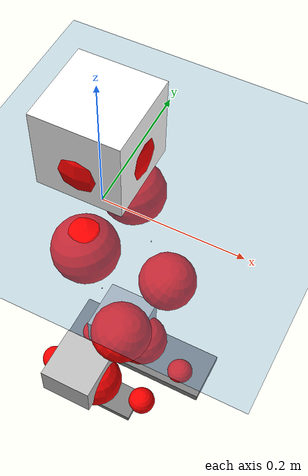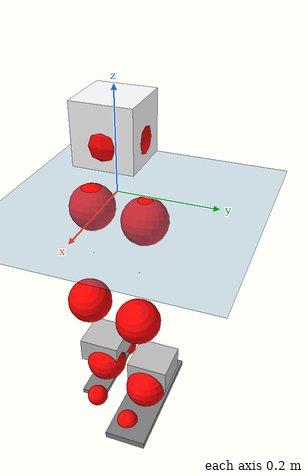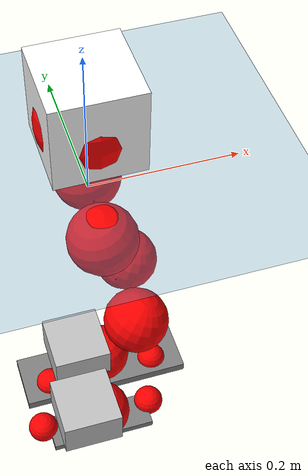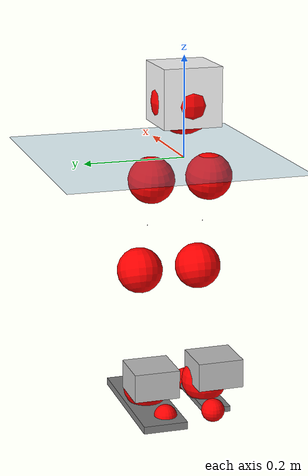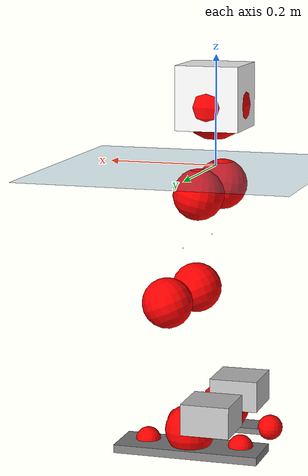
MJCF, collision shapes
<mujoco model="pi_12dof_release_v1">
  <compiler angle="radian" assetdir="assets" balanceinertia="true" inertiafromgeom="false"/>

  <option timestep="0.005" density="1.2" viscosity="2e-05"/>

  <size nkey="1"/>

  <visual>
    <quality shadowsize="8192"/>
    <map shadowclip="0.5"/>
  </visual>

  <default>
    <default class="/">
      <joint armature="0.01" damping="0.01" frictionloss="0.01"/>
      <geom contype="0" conaffinity="0" group="1" solref="-1000 -80"/>
      <site size="0.01 0.005 0.005" group="5"/>
      <general forcelimited="true" biastype="affine" gainprm="20" biasprm="0 -20 -0.5"/>
      <default class="foot">
        <geom size="0.0845 0.036 0.005" type="box" condim="6" group="4" priority="1" friction="0.9 0.2 0.2" solimp="0.015 1 0.005"/>
      </default>
      <default class="reward_collision_sphere">
        <geom group="5" rgba="1 0 0 1"/>
      </default>
    </default>
  </default>

  <asset>
    <texture type="skybox" colorspace="auto" name="//unnamed_texture_0" builtin="gradient" rgb1="0.95 0.95 0.95" rgb2="0.95 0.95 0.95" width="100" height="600"/>
    <texture type="2d" colorspace="auto" name="texplane" builtin="checker" rgb1="0.345 0.575 0.748" rgb2="0.345 0.575 0.748" markrgb="1 1 1" width="512" height="512"/>
    <material name="MatPlane" class="/" texture="texplane" texuniform="true" texrepeat="2 2" specular="0.9"/>
    <mesh name="baselink_1" class="/" file="baselink_1.STL"/>
    <mesh name="r_hip_pitch_link" class="/" file="r_hip_pitch_link.STL"/>
    <mesh name="r_hip_roll_link" class="/" file="r_hip_roll_link.STL"/>
    <mesh name="r_thigh_link" class="/" file="r_thigh_link.STL"/>
    <mesh name="r_calf_link" class="/" file="r_calf_link.STL"/>
    <mesh name="r_ankle_pitch_link" class="/" file="r_ankle_pitch_link.STL"/>
    <mesh name="r_ankle_roll_link" class="/" file="r_ankle_roll_link.STL"/>
    <mesh name="l_hip_pitch_link" class="/" file="l_hip_pitch_link.STL"/>
    <mesh name="l_hip_roll_link" class="/" file="l_hip_roll_link.STL"/>
    <mesh name="l_thigh_link" class="/" file="l_thigh_link.STL"/>
    <mesh name="l_calf_link" class="/" file="l_calf_link.STL"/>
    <mesh name="l_ankle_pitch_link" class="/" file="l_ankle_pitch_link.STL"/>
    <mesh name="l_ankle_roll_link" class="/" file="l_ankle_roll_link.STL"/>
  </asset>

  <worldbody>
    <geom name="floor" class="/" size="100 100 0.125" type="plane" group="0" material="MatPlane"/>
    <light name="toplight_shadow" class="/" pos="0 0 5" dir="0.0990148 0.0990148 -0.990148" type="directional" ambient="0.04 0.04 0.04" diffuse="0.55 0.55 0.55" specular="0.12 0.12 0.12"/>
    <light name="toplight_fill" class="/" pos="0 0 5" dir="0.0990148 0.0990148 -0.990148" type="directional" castshadow="false" ambient="0.04 0.04 0.04" diffuse="0.3 0.3 0.3" specular="0.08 0.08 0.08"/>
    <body name="trunk" pos="0.0020245 0.000337348 0.00436885" quat="1 0.000723717 -0.000168392 0.000625045">
      <inertial pos="0.00865916 0.00687302 0.0597604" quat="0.696346 0.0103332 0.0081574 0.717586" mass="3.40061" diaginertia="0.0331612 0.000978279 0.0293936"/>
      <joint name="//unnamed_joint_0" type="free"/>
      <geom name="//unnamed_geom_1" class="/" type="mesh" density="0" rgba="1 1 1 1" mesh="baselink_1"/>
      <geom name="//unnamed_geom_2" class="/" size="0.0578869 0.0578869 0.0578869" pos="0 0 0.121101" type="box" rgba="1 1 1 1"/>
      <geom name="//unnamed_geom_3" class="reward_collision_sphere" size="0.0636756" pos="0 0 0.105963"/>
      <site name="imu" class="/" pos="0.0453597 -0.00881164 -0.0346903" size="0.0115774"/>
      <camera name="track" class="/" pos="0 -1.30686 0" quat="0.707107 0.707107 0 0" mode="trackcom"/>
      <camera name="ego_camera" class="/" pos="0.0979514 0 0.272477" quat="-0.5 -0.5 0.5 0.5"/>
      <body name="r_hip_pitch_link" pos="0.000978065 -0.0143024 -0.0493034" quat="0.992252 -0.000479232 -0.124236 -0.000651125">
        <inertial pos="-0.00594349 -0.0342172 -0.00200632" quat="-0.0347427 0.707251 -0.027578 0.70557" mass="0.613119" diaginertia="0.000442408 1.12467e-05 0.000643548"/>
        <joint name="r_hip_pitch_joint" class="/" pos="0 0 0" axis="0.0376076 -0.99883 0.0303927" range="-1.75788 1.40779" armature="0.0125192" damping="0.0516522" frictionloss="0.0118164"/>
        <geom name="//unnamed_geom_4" class="/" type="mesh" density="0" rgba="0.75294 0.75294 0.75294 1" mesh="r_hip_pitch_link"/>
        <geom name="//unnamed_geom_5" class="/" size="0.000578869 0.000578869 0.000578869" type="box" rgba="0.75294 0.75294 0.75294 1"/>
        <body name="r_hip_roll_link" pos="0.000536657 -0.0391666 0.00272668" quat="1 -5.79679e-05 0.000162516 -0.00015996">
          <inertial pos="-0.00325773 0.000988537 -0.0996239" quat="0.704998 -0.0781739 -0.0818361 0.700122" mass="0.592061" diaginertia="0.0014241 3.40527e-05 0.00102785"/>
          <joint name="r_hip_roll_joint" class="/" pos="0 0 0" axis="-0.999022 -0.012121 -0.0425183" range="0.0255143 0.482292" armature="0.0122874" damping="0.00559653" frictionloss="0.00875039"/>
          <geom name="//unnamed_geom_6" class="/" type="mesh" density="0" rgba="0.75294 0.75294 0.75294 1" mesh="r_hip_roll_link"/>
          <geom name="//unnamed_geom_7" class="/" size="0.000578869 0.000578869 0.000578869" type="box" rgba="0.75294 0.75294 0.75294 1"/>
          <geom name="//unnamed_geom_8" class="reward_collision_sphere" size="0.0463095"/>
          <body name="r_thigh_link" pos="-0.00611917 0.00601494 -0.0956481" quat="0.999996 -0.000393481 0.0026389 -0.00119072">
            <inertial pos="-0.000135388 0.00235748 -0.0727747" quat="0.736167 0.676796 0.000581793 0.00239816" mass="0.176369" diaginertia="0.000489606 1.13645e-05 0.000469328"/>
            <joint name="r_thigh_joint" class="/" pos="0 0 0" axis="-0.0126283 -0.0125648 -0.999841" range="-0.312494 0.578323" armature="0.0106295" damping="0.000942312" frictionloss="0.012485"/>
            <geom name="//unnamed_geom_9" class="/" type="mesh" density="0" rgba="0.75294 0.75294 0.75294 1" mesh="r_thigh_link"/>
            <geom name="//unnamed_geom_10" class="/" size="0.000578869 0.000578869 0.000578869" type="box" rgba="0.75294 0.75294 0.75294 1"/>
            <body name="r_calf_link" pos="0.00381615 -0.000773248 -0.106865" quat="0.947292 -0.000618065 0.320372 0.00068249">
              <inertial pos="-0.00723731 -0.00138071 -0.104068" quat="0.999961 0.00151601 0.00112827 0.00868016" mass="1.19713" diaginertia="0.0130319 0.000384254 0.00131621"/>
              <joint name="r_calf_joint" class="/" pos="0 0 0" axis="-0.0163913 -0.999667 0.0199125" stiffness="0.00232184" range="-1.69655 0.594586" armature="0.0139023" damping="0" frictionloss="0.0127674"/>
              <geom name="//unnamed_geom_11" class="/" type="mesh" density="0" rgba="0.75294 0.75294 0.75294 1" mesh="r_calf_link"/>
              <geom name="//unnamed_geom_12" class="/" size="0.000578869 0.000578869 0.000578869" type="box" rgba="0.75294 0.75294 0.75294 1"/>
              <geom name="//unnamed_geom_13" class="reward_collision_sphere" size="0.0463095"/>
              <body name="r_ankle_pitch_link" pos="0.00158994 -0.00756143 -0.209941" quat="0.980071 -5.35557e-05 -0.198649 -8.4397e-05">
                <inertial pos="0.00597508 0.00402225 -0.00223353" quat="-0.0293192 0.711417 -0.00974273 0.702091" mass="0.320027" diaginertia="0.0012771 2.68741e-05 0.000992317"/>
                <joint name="r_ankle_pitch_joint" class="/" pos="0 0 0" axis="-0.0052784 -0.999984 -0.00221735" stiffness="0.0215157" range="-1.31507 0.529808" armature="0.0107855" damping="0.0401995" frictionloss="0.0113007"/>
                <geom name="//unnamed_geom_14" class="/" type="mesh" density="0" rgba="0.75294 0.75294 0.75294 1" mesh="r_ankle_pitch_link"/>
                <geom name="//unnamed_geom_15" class="/" size="0.0451518 0.0463095 0.0289434" type="box" rgba="0.75294 0.75294 0.75294 1"/>
                <body name="r_ankle_roll_link" pos="0.0912386 0.0114026 -0.00121628" quat="1 0.00012791 0.000389696 0.000430853">
                  <inertial pos="-0.0314764 -0.00109802 -0.0296872" quat="0.548394 0.439638 0.435112 0.562726" mass="0.793776" diaginertia="0.00480555 0.000132595 0.00232399"/>
                  <joint name="r_ankle_roll_joint" class="/" pos="0 0 0" axis="-0.999895 0.0068667 -0.0127949" stiffness="0.00988931" range="-0.0724234 0.134177" armature="0.0115409" damping="0.0413906" frictionloss="0.00777052"/>
                  <geom name="//unnamed_geom_16" class="/" type="mesh" density="0" rgba="0.75294 0.75294 0.75294 1" mesh="r_ankle_roll_link"/>
                  <geom name="//unnamed_geom_17" class="/" type="mesh" rgba="0.75294 0.75294 0.75294 1" mesh="r_ankle_roll_link"/>
                  <geom name="right_foot" class="foot" size="0.0806608 0.0272498 0.00532829" pos="-0.0666069 0 -0.0666056"/>
                  <geom name="//unnamed_geom_19" class="reward_collision_sphere" size="0.0463095" pos="-0.0653009 0 -0.0302753"/>
                  <geom name="//unnamed_geom_20" class="reward_collision_sphere" size="0.0231548" pos="0.0195903 0.0130686 -0.0605505"/>
                  <geom name="//unnamed_geom_21" class="reward_collision_sphere" size="0.0231548" pos="-0.156722 0.0130686 -0.0605505"/>
                  <site name="right_foot" class="foot" pos="-0.0666069 0 -0.0666056" size="0.0115774"/>
                </body>
              </body>
            </body>
          </body>
        </body>
      </body>
      <body name="l_hip_pitch_link" pos="0.0087024 0.0140721 -0.0496273" quat="0.992194 2.90907e-07 -0.124708 -1.69148e-06">
        <inertial pos="-0.000374065 0.0280376 0.00116063" quat="-0.0334822 0.711216 0.0154475 0.702006" mass="0.612002" diaginertia="0.000529525 1.20727e-05 0.000939793"/>
        <joint name="l_hip_pitch_joint" class="/" pos="0 0 0" axis="0.0105808 0.999645 -0.0244435" range="-1.1019 1.79107" armature="0.00682343" damping="0.0475926" frictionloss="0.0107711"/>
        <geom name="//unnamed_geom_22" class="/" type="mesh" density="0" rgba="0.75294 0.75294 0.75294 1" mesh="l_hip_pitch_link"/>
        <geom name="//unnamed_geom_23" class="/" size="0.000578869 0.000578869 0.000578869" type="box" rgba="0.75294 0.75294 0.75294 1"/>
        <body name="l_hip_roll_link" pos="0.00363391 0.0468973 -5.13213e-06" quat="1 0.00016031 5.1003e-06 -0.000131771">
          <inertial pos="-0.000894762 -0.00562487 -0.094188" quat="0.694776 -0.0706042 -0.0723003 0.712091" mass="0.605989" diaginertia="0.00127586 3.44209e-05 0.00102236"/>
          <joint name="l_hip_roll_joint" class="/" pos="0 0 0" axis="-0.999037 0.0181414 0.0399559" stiffness="0.00205158" range="-0.677927 0.0386413" armature="0.0123403" damping="0.00602195" frictionloss="0.0155905"/>
          <geom name="//unnamed_geom_24" class="/" type="mesh" density="0" rgba="0.75294 0.75294 0.75294 1" mesh="l_hip_roll_link"/>
          <geom name="//unnamed_geom_25" class="/" size="0.000578869 0.000578869 0.000578869" type="box" rgba="0.75294 0.75294 0.75294 1"/>
          <geom name="//unnamed_geom_26" class="reward_collision_sphere" size="0.0463095"/>
          <body name="l_thigh_link" pos="0.00374542 -0.000704201 -0.103676" quat="1 0.000199041 -0.000423625 6.16829e-06">
            <inertial pos="0.000694382 0.000249272 -0.0749634" quat="0.654464 0.754957 -0.0296636 0.0289373" mass="0.176682" diaginertia="0.000490385 1.16247e-05 0.00051678"/>
            <joint name="l_thigh_joint" class="/" pos="0 0 0" axis="0.00411176 0.000656255 -0.999991" range="-0.538413 0.224802" armature="0.0104146" damping="0.0376796" frictionloss="0.00948886"/>
            <geom name="//unnamed_geom_27" class="/" type="mesh" density="0" rgba="0.75294 0.75294 0.75294 1" mesh="l_thigh_link"/>
            <geom name="//unnamed_geom_28" class="/" size="0.000578869 0.000578869 0.000578869" type="box" rgba="0.75294 0.75294 0.75294 1"/>
            <body name="l_calf_link" pos="0.00119849 0.00733303 -0.104575" quat="0.947024 0.00182668 0.321158 -0.000439537">
              <inertial pos="0.00801179 0.00045461 -0.112254" quat="0.999972 0.00338789 0.000628809 0.00665532" mass="1.28901" diaginertia="0.0138473 0.000430782 0.00157637"/>
              <joint name="l_calf_joint" class="/" pos="0 0 0" axis="-0.000146245 0.999982 0.00604987" range="-0.665436 1.85136" armature="0.0153134" damping="0.00804838" frictionloss="0.0156652"/>
              <geom name="//unnamed_geom_29" class="/" type="mesh" density="0" rgba="0.75294 0.75294 0.75294 1" mesh="l_calf_link"/>
              <geom name="//unnamed_geom_30" class="/" size="0.000578869 0.000578869 0.000578869" type="box" rgba="0.75294 0.75294 0.75294 1"/>
              <geom name="//unnamed_geom_31" class="reward_collision_sphere" size="0.0463095"/>
              <body name="l_ankle_pitch_link" pos="0.00227609 0.00168968 -0.219708" quat="0.980078 2.72583e-05 -0.198613 -0.000995987">
                <inertial pos="0.00160018 -0.0017353 0.0010748" quat="-0.000212468 0.707679 0.00274069 0.706529" mass="0.338801" diaginertia="0.0014155 3.027e-05 0.00108059"/>
                <joint name="l_ankle_pitch_joint" class="/" pos="0 0 0" axis="-0.00342608 0.999648 0.0263209" range="-0.522945 1.27224" armature="0.0114901" damping="0.0312321" frictionloss="0.00574896"/>
                <geom name="//unnamed_geom_32" class="/" type="mesh" density="0" rgba="0.75294 0.75294 0.75294 1" mesh="l_ankle_pitch_link"/>
                <geom name="//unnamed_geom_33" class="/" size="0.0451518 0.0463095 0.0289434" type="box" rgba="0.75294 0.75294 0.75294 1"/>
                <body name="l_ankle_roll_link" pos="0.105568 -0.0017347 6.72163e-05" quat="0.999999 0.000651569 -0.000543627 0.000582625">
                  <inertial pos="-0.0304488 -0.000222231 -0.0203797" quat="0.541392 0.455227 0.438602 0.554339" mass="0.84507" diaginertia="0.00456457 0.000116454 0.00236282"/>
                  <joint name="l_ankle_roll_joint" class="/" pos="0 0 0" axis="-0.999929 0.00852088 0.00838591" stiffness="0.00570871" range="-0.159621 0.145638" armature="0.0116339" damping="0.0146991" frictionloss="0.0164713"/>
                  <geom name="//unnamed_geom_34" class="/" type="mesh" density="0" rgba="0.75294 0.75294 0.75294 1" mesh="l_ankle_roll_link"/>
                  <geom name="//unnamed_geom_35" class="/" type="mesh" rgba="0.75294 0.75294 0.75294 1" mesh="l_ankle_roll_link"/>
                  <geom name="left_foot" class="foot" size="0.134882 0.0446025 0.00745237" pos="-0.0666069 0 -0.0666056"/>
                  <geom name="//unnamed_geom_37" class="reward_collision_sphere" size="0.0463095" pos="-0.0653009 0 -0.0302753"/>
                  <geom name="//unnamed_geom_38" class="reward_collision_sphere" size="0.0231548" pos="0.0195903 -0.0130686 -0.0605505"/>
                  <geom name="//unnamed_geom_39" class="reward_collision_sphere" size="0.0231548" pos="-0.156722 -0.0130686 -0.0605505"/>
                  <site name="left_foot" class="foot" pos="-0.0666069 0 -0.0666056" size="0.0115774"/>
                </body>
              </body>
            </body>
          </body>
        </body>
      </body>
    </body>
  </worldbody>

  <contact>
    <pair class="/" geom1="floor" geom2="right_foot" name="//unnamed_contact_1"/>
    <pair class="/" geom1="floor" geom2="left_foot" name="//unnamed_contact_0"/>
  </contact>

  <actuator>
    <general name="r_hip_pitch_joint" class="/" joint="r_hip_pitch_joint" forcerange="-23.8866 23.8866" gainprm="22.4357" biasprm="0 -22.4357 -0.482991"/>
    <general name="r_hip_roll_joint" class="/" joint="r_hip_roll_joint" forcerange="-29.988 29.988" gainprm="22.4357" biasprm="0 -22.4357 -0.482991"/>
    <general name="r_thigh_joint" class="/" joint="r_thigh_joint" forcerange="-19.7433 19.7433" gainprm="22.4357" biasprm="0 -22.4357 -0.482991"/>
    <general name="r_calf_joint" class="/" joint="r_calf_joint" forcerange="-22.7706 22.7706" gainprm="22.4357" biasprm="0 -22.4357 -0.482991"/>
    <general name="r_ankle_pitch_joint" class="/" joint="r_ankle_pitch_joint" forcerange="-29.7306 29.7306" gainprm="22.4357" biasprm="0 -22.4357 -0.482991"/>
    <general name="r_ankle_roll_joint" class="/" joint="r_ankle_roll_joint" forcerange="-24.4654 24.4654" gainprm="22.4357" biasprm="0 -22.4357 -0.482991"/>
    <general name="l_hip_pitch_joint" class="/" joint="l_hip_pitch_joint" forcerange="-23.0558 23.0558" gainprm="22.4357" biasprm="0 -22.4357 -0.482991"/>
    <general name="l_hip_roll_joint" class="/" joint="l_hip_roll_joint" forcerange="-27.0027 27.0027" gainprm="22.4357" biasprm="0 -22.4357 -0.482991"/>
    <general name="l_thigh_joint" class="/" joint="l_thigh_joint" forcerange="-23.7803 23.7803" gainprm="22.4357" biasprm="0 -22.4357 -0.482991"/>
    <general name="l_calf_joint" class="/" joint="l_calf_joint" forcerange="-27.4855 27.4855" gainprm="22.4357" biasprm="0 -22.4357 -0.482991"/>
    <general name="l_ankle_pitch_joint" class="/" joint="l_ankle_pitch_joint" forcerange="-22.7585 22.7585" gainprm="22.4357" biasprm="0 -22.4357 -0.482991"/>
    <general name="l_ankle_roll_joint" class="/" joint="l_ankle_roll_joint" forcerange="-30.4509 30.4509" gainprm="22.4357" biasprm="0 -22.4357 -0.482991"/>
  </actuator>

  <sensor>
    <gyro site="imu" name="imu_angular_velocity"/>
    <velocimeter site="imu" name="imu_linear_velocity"/>
    <framelinvel objtype="site" objname="left_foot" name="left_foot_global_linear_velocity"/>
    <framelinvel objtype="site" objname="right_foot" name="right_foot_global_linear_velocity"/>
  </sensor>

  <keyframe>
    <key name="home" qpos="0 0 0.291 1 0 0 0 0.4 0 0 -0.8 0.4 0 -0.4 0 0 0.8 -0.4 0"/>
  </keyframe>
</mujoco>
